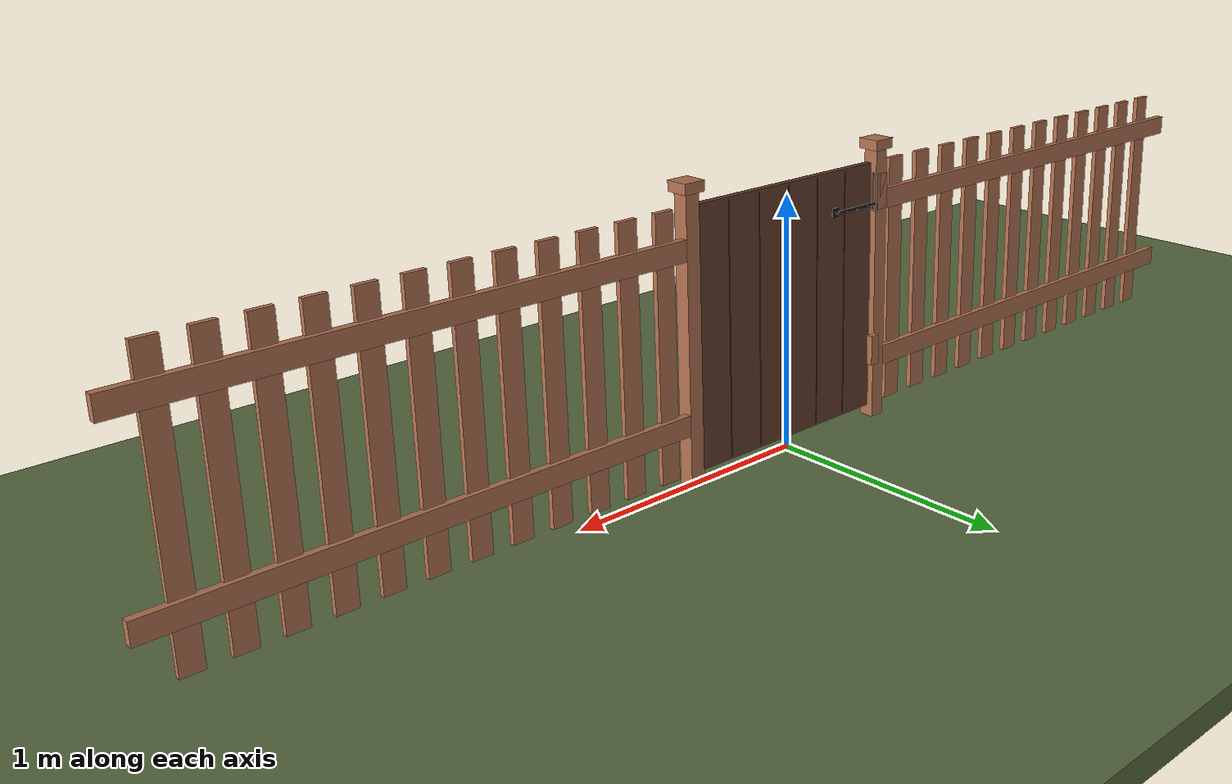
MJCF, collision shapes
<?xml version="1.0" ?>
<mujoco model="db0926_gate_swing_full">
  <compiler angle="radian" meshdir="../../hardware" texturedir="../../textures" autolimits="true" inertiafromgeom="false"/>
  <option timestep="0.002" integrator="implicitfast" cone="elliptic" impratio="10" noslip_iterations="3">
    <flag multiccd="enable"/>
  </option>
  <size memory="16M"/>
  <default>
    <geom condim="4" solref="0.005 1" solimp="0.95 0.99 0.001"/>
    <joint solreflimit="0.005 1" solimplimit="0.95 0.99 0.001"/>
    <tendon solreflimit="0.005 1"/>
    <equality solref="0.002 1"/>
  </default>
  <visual>
    <headlight ambient="0.4 0.4 0.4" diffuse="0.7 0.7 0.7" specular="0.2 0.2 0.2"/>
    <quality shadowsize="4096"/>
    <map znear="0.01" zfar="60"/>
  </visual>
  <asset>
    <mesh name="strap_hinge_f1a982ddce" file="strap_hinge_f1a982ddce.obj"/>
    <mesh name="thumb_latch_0073ea78ed" file="thumb_latch_0073ea78ed.obj"/>
    <material name="mat_floor" rgba="0.35 0.42 0.25 1" specular="0.2" shininess="0.15" reflectance="0"/>
    <material name="mat_wall" rgba="0.78 0.76 0.7 1" specular="0.2" shininess="0.1" reflectance="0"/>
    <material name="mat_leaf" rgba="0.391 0.239 0.161 1" specular="0.2" shininess="0.4" reflectance="0"/>
    <material name="mat_leaf_brace" rgba="0.352 0.215 0.145 1" specular="0.2" shininess="0.2" reflectance="0"/>
    <material name="mat_hinge" rgba="0.65 0.66 0.68 1" specular="0.74" shininess="0.5" reflectance="0.36"/>
    <material name="mat_op_wrought_iron" rgba="0.08 0.08 0.09 1" specular="0.56" shininess="0.25" reflectance="0.24"/>
    <material name="mat_frame" rgba="0.7 0.45 0.32 1" specular="0.2" shininess="0.4" reflectance="0"/>
    <material name="mat_bumper_stop" rgba="0.08 0.08 0.08 1" specular="0.2" shininess="0.1" reflectance="0"/>
    <material name="mat_stop_base" rgba="0.9 0.9 0.92 1" specular="0.8" shininess="0.9" reflectance="0.4"/>
    <material name="mat_fence" rgba="0.7 0.45 0.32 1" specular="0.2" shininess="0.4" reflectance="0"/>
    <texture name="skybox" type="skybox" builtin="gradient" rgb1="0.6 0.7 0.85" rgb2="0.9 0.92 0.95" width="256" height="256"/>
  </asset>
  <worldbody>
    <light name="sun" pos="1.5 -2.5 4" dir="-0.3 0.5 -0.8" directional="true" diffuse="0.8 0.8 0.8" specular="0.3 0.3 0.3" castshadow="true"/>
    <light name="fill" pos="-1.5 2.5 3" dir="0.3 -0.5 -0.7" directional="true" diffuse="0.35 0.35 0.4" castshadow="false"/>
    <camera name="robot_view" pos="0 -1.875 1.035" xyaxes="1 0 0 0 0.26963 0.962964" fovy="52"/>
    <camera name="far_view" pos="0 1.875 1.035" xyaxes="-1 0 0 0 -0.26963 0.962964" fovy="52"/>
    <camera name="iso" pos="-1.425 -1.575 1.335" xyaxes="0.741536 -0.670913 0 0.242917 0.268487 0.932151" fovy="46"/>
    <camera name="detail_handle" pos="-0.187 -0.8475 1.03" xyaxes="0.97561 0.219512 0 -0.070934 0.315262 0.94635" fovy="38"/>
    <geom name="floor" type="box" size="6 6 0.05" pos="0 0 -0.05" material="mat_floor" group="0" contype="1" conaffinity="1" friction="0.8 0.005 0.0001" density="2400"/>
    <geom name="hinge_pintle_0" type="cylinder" size="0.008 0.02" pos="0.453 -0.05 0.174" material="mat_hinge" group="1" contype="0" conaffinity="0" density="7850"/>
    <geom name="hinge_pintle_1" type="cylinder" size="0.008 0.02" pos="0.453 -0.05 0.874" material="mat_hinge" group="1" contype="0" conaffinity="0" density="7850"/>
    <geom name="leaf_latch_bar_keeper_b" type="box" size="0.015 0.0025 0.0005" pos="-0.4555 0.0245 0.8625" quat="0.5 0.5 0.5 0.5" material="mat_op_wrought_iron" group="1" contype="0" conaffinity="0" density="7800"/>
    <geom name="leaf_latch_bar_keeper_l" type="box" size="0.0025 0.07 0.0005" pos="-0.4555 0.012 0.935" quat="0.5 0.5 0.5 0.5" material="mat_op_wrought_iron" group="1" contype="0" conaffinity="0" density="7800"/>
    <geom name="leaf_latch_bar_keeper_t" type="box" size="0.015 0.0025 0.0005" pos="-0.4555 0.0245 1.0075" quat="0.5 0.5 0.5 0.5" material="mat_op_wrought_iron" group="1" contype="0" conaffinity="0" density="7800"/>
    <geom name="leaf_latch_bar_keeper_r" type="box" size="0.0025 0.07 0.0005" pos="-0.4555 0.037 0.935" quat="0.5 0.5 0.5 0.5" material="mat_op_wrought_iron" group="1" contype="0" conaffinity="0" density="7800"/>
    <geom name="post_hinge" type="box" size="0.03 0.03 0.55" pos="0.486 0 0.55" material="mat_frame" group="0" contype="1" conaffinity="1" friction="0.6 0.005 0.0001" density="350"/>
    <geom name="post_hinge_cap" type="box" size="0.045 0.045 0.02" pos="0.486 0 1.12" material="mat_frame" group="1" contype="0" conaffinity="0" density="350"/>
    <geom name="post_935_wall_n" type="box" size="0.03 0.00225 0.07" pos="-0.486 0.03225 0.935" material="mat_frame" group="0" contype="1" conaffinity="1" friction="0.6 0.005 0.0001" density="350"/>
    <geom name="post_935_wall_p" type="box" size="0.03 0.02225 0.07" pos="-0.486 -0.00775 0.935" material="mat_frame" group="0" contype="1" conaffinity="1" friction="0.6 0.005 0.0001" density="350"/>
    <geom name="post_935_back" type="box" size="0.02 0.01 0.07" pos="-0.496 0.0245 0.935" material="mat_frame" group="0" contype="1" conaffinity="1" friction="0.6 0.005 0.0001" density="350"/>
    <geom name="post_latch_0" type="box" size="0.03 0.03 0.4325" pos="-0.486 0 0.4325" material="mat_frame" group="0" contype="1" conaffinity="1" friction="0.6 0.005 0.0001" density="350"/>
    <geom name="post_latch_1" type="box" size="0.03 0.03 0.0475" pos="-0.486 0 1.0525" material="mat_frame" group="0" contype="1" conaffinity="1" friction="0.6 0.005 0.0001" density="350"/>
    <geom name="post_latch_cap" type="box" size="0.045 0.045 0.02" pos="-0.486 0 1.12" material="mat_frame" group="1" contype="0" conaffinity="0" density="350"/>
    <geom name="gate_stop" type="box" size="0.02 0.012 0.06" pos="-0.436 0.0465 0.3" material="mat_frame" group="0" contype="1" conaffinity="1" friction="0.6 0.005 0.0001" density="350"/>
    <geom name="door_stop_base" type="cylinder" size="0.022 0.003" pos="0.325576 -0.804333 0.003" material="mat_stop_base" group="0" contype="1" conaffinity="1" friction="0.6 0.005 0.0001" density="7850"/>
    <geom name="door_stop_post" type="cylinder" size="0.012 0.042" pos="0.325576 -0.804333 0.048" material="mat_stop_base" group="0" contype="1" conaffinity="1" friction="0.6 0.005 0.0001" density="7850"/>
    <geom name="door_stop_bumper" type="cylinder" size="0.022 0.02" pos="0.325576 -0.804333 0.11" material="mat_bumper_stop" group="0" contype="1" conaffinity="1" friction="0.6 0.005 0.0001" density="1100"/>
    <geom name="fence_picket_l_0" type="box" size="0.04 0.01 0.5" pos="-0.596 0 0.55" material="mat_fence" group="0" contype="1" conaffinity="1" friction="0.6 0.005 0.0001" density="400"/>
    <geom name="fence_picket_l_1" type="box" size="0.04 0.01 0.5" pos="-0.756 0 0.55" material="mat_fence" group="0" contype="1" conaffinity="1" friction="0.6 0.005 0.0001" density="400"/>
    <geom name="fence_picket_l_2" type="box" size="0.04 0.01 0.5" pos="-0.916 0 0.55" material="mat_fence" group="0" contype="1" conaffinity="1" friction="0.6 0.005 0.0001" density="400"/>
    <geom name="fence_picket_l_3" type="box" size="0.04 0.01 0.5" pos="-1.076 0 0.55" material="mat_fence" group="0" contype="1" conaffinity="1" friction="0.6 0.005 0.0001" density="400"/>
    <geom name="fence_picket_l_4" type="box" size="0.04 0.01 0.5" pos="-1.236 0 0.55" material="mat_fence" group="0" contype="1" conaffinity="1" friction="0.6 0.005 0.0001" density="400"/>
    <geom name="fence_picket_l_5" type="box" size="0.04 0.01 0.5" pos="-1.396 0 0.55" material="mat_fence" group="0" contype="1" conaffinity="1" friction="0.6 0.005 0.0001" density="400"/>
    <geom name="fence_picket_l_6" type="box" size="0.04 0.01 0.5" pos="-1.556 0 0.55" material="mat_fence" group="0" contype="1" conaffinity="1" friction="0.6 0.005 0.0001" density="400"/>
    <geom name="fence_picket_l_7" type="box" size="0.04 0.01 0.5" pos="-1.716 0 0.55" material="mat_fence" group="0" contype="1" conaffinity="1" friction="0.6 0.005 0.0001" density="400"/>
    <geom name="fence_picket_l_8" type="box" size="0.04 0.01 0.5" pos="-1.876 0 0.55" material="mat_fence" group="0" contype="1" conaffinity="1" friction="0.6 0.005 0.0001" density="400"/>
    <geom name="fence_picket_l_9" type="box" size="0.04 0.01 0.5" pos="-2.036 0 0.55" material="mat_fence" group="0" contype="1" conaffinity="1" friction="0.6 0.005 0.0001" density="400"/>
    <geom name="fence_picket_l_10" type="box" size="0.04 0.01 0.5" pos="-2.196 0 0.55" material="mat_fence" group="0" contype="1" conaffinity="1" friction="0.6 0.005 0.0001" density="400"/>
    <geom name="fence_picket_l_11" type="box" size="0.04 0.01 0.5" pos="-2.356 0 0.55" material="mat_fence" group="0" contype="1" conaffinity="1" friction="0.6 0.005 0.0001" density="400"/>
    <geom name="fence_rail_l" type="box" size="1 0.015 0.04" pos="-1.516 0.015 0.9" material="mat_fence" group="0" contype="1" conaffinity="1" friction="0.6 0.005 0.0001" density="400"/>
    <geom name="fence_rail_b_l" type="box" size="1 0.015 0.04" pos="-1.516 0.015 0.25" material="mat_fence" group="0" contype="1" conaffinity="1" friction="0.6 0.005 0.0001" density="400"/>
    <geom name="fence_picket_r_0" type="box" size="0.04 0.01 0.5" pos="0.596 0 0.55" material="mat_fence" group="0" contype="1" conaffinity="1" friction="0.6 0.005 0.0001" density="400"/>
    <geom name="fence_picket_r_1" type="box" size="0.04 0.01 0.5" pos="0.756 0 0.55" material="mat_fence" group="0" contype="1" conaffinity="1" friction="0.6 0.005 0.0001" density="400"/>
    <geom name="fence_picket_r_2" type="box" size="0.04 0.01 0.5" pos="0.916 0 0.55" material="mat_fence" group="0" contype="1" conaffinity="1" friction="0.6 0.005 0.0001" density="400"/>
    <geom name="fence_picket_r_3" type="box" size="0.04 0.01 0.5" pos="1.076 0 0.55" material="mat_fence" group="0" contype="1" conaffinity="1" friction="0.6 0.005 0.0001" density="400"/>
    <geom name="fence_picket_r_4" type="box" size="0.04 0.01 0.5" pos="1.236 0 0.55" material="mat_fence" group="0" contype="1" conaffinity="1" friction="0.6 0.005 0.0001" density="400"/>
    <geom name="fence_picket_r_5" type="box" size="0.04 0.01 0.5" pos="1.396 0 0.55" material="mat_fence" group="0" contype="1" conaffinity="1" friction="0.6 0.005 0.0001" density="400"/>
    <geom name="fence_picket_r_6" type="box" size="0.04 0.01 0.5" pos="1.556 0 0.55" material="mat_fence" group="0" contype="1" conaffinity="1" friction="0.6 0.005 0.0001" density="400"/>
    <geom name="fence_picket_r_7" type="box" size="0.04 0.01 0.5" pos="1.716 0 0.55" material="mat_fence" group="0" contype="1" conaffinity="1" friction="0.6 0.005 0.0001" density="400"/>
    <geom name="fence_picket_r_8" type="box" size="0.04 0.01 0.5" pos="1.876 0 0.55" material="mat_fence" group="0" contype="1" conaffinity="1" friction="0.6 0.005 0.0001" density="400"/>
    <geom name="fence_picket_r_9" type="box" size="0.04 0.01 0.5" pos="2.036 0 0.55" material="mat_fence" group="0" contype="1" conaffinity="1" friction="0.6 0.005 0.0001" density="400"/>
    <geom name="fence_picket_r_10" type="box" size="0.04 0.01 0.5" pos="2.196 0 0.55" material="mat_fence" group="0" contype="1" conaffinity="1" friction="0.6 0.005 0.0001" density="400"/>
    <geom name="fence_picket_r_11" type="box" size="0.04 0.01 0.5" pos="2.356 0 0.55" material="mat_fence" group="0" contype="1" conaffinity="1" friction="0.6 0.005 0.0001" density="400"/>
    <geom name="fence_rail_r" type="box" size="1 0.015 0.04" pos="1.516 0.015 0.9" material="mat_fence" group="0" contype="1" conaffinity="1" friction="0.6 0.005 0.0001" density="400"/>
    <geom name="fence_rail_b_r" type="box" size="1 0.015 0.04" pos="1.516 0.015 0.25" material="mat_fence" group="0" contype="1" conaffinity="1" friction="0.6 0.005 0.0001" density="400"/>
    <geom name="hinge_pintle_0_strap_0" type="box" size="0.0064 0.0065 0.016" pos="0.453 -0.036 0.174" material="mat_hinge" group="1" contype="0" conaffinity="0" density="7850"/>
    <geom name="hinge_pintle_1_strap_0" type="box" size="0.0064 0.0065 0.016" pos="0.453 -0.036 0.874" material="mat_hinge" group="1" contype="0" conaffinity="0" density="7850"/>
    <geom name="gate_stop_strap_0" type="box" size="0.02 0.00275 0.048" pos="-0.44 0.03225 0.3" material="mat_frame" group="1" contype="0" conaffinity="0" density="7850"/>
    <site name="approach_point" pos="0 -1.5 0" quat="1 0 0 0" size="0.05" rgba="0.2 0.9 0.2 0.5" group="4"/>
    <site name="goal_point" pos="0 1.5 0" quat="1 0 0 0" size="0.05" rgba="0.2 0.9 0.2 0.5" group="4"/>
    <site name="door_plane_center" pos="0 0 0.51" quat="1 0 0 0" size="0.02" rgba="0.2 0.9 0.2 0.5" group="4"/>
    <body name="leaf" pos="0.456 0 0">
      <inertial pos="-0.425692 -0.005744 0.566851" mass="8.855048" quat="0.625551 0.629221 0.326093 -0.326236" diaginertia="0.687207079 0.809790874 1.493536283"/>
      <joint name="leaf_hinge" type="hinge" axis="0 0 1" pos="-0.003 -0.05 0" limited="true" range="0 1.396263" damping="0.168492" frictionloss="4.901502" armature="0.02"/>
      <geom name="leaf_slab" type="box" size="0.45 0.0125 0.5" pos="-0.453 0 0.55" material="mat_leaf" group="0" contype="1" conaffinity="1" friction="0.35 0.005 0.0001" density="1"/>
      <geom name="leaf_plank_gap_1" type="box" size="0.002 0.0135 0.49" pos="-0.153 0 0.55" material="mat_leaf_brace" group="1" contype="0" conaffinity="0" density="1"/>
      <geom name="leaf_plank_gap_2" type="box" size="0.002 0.0135 0.49" pos="-0.303 0 0.55" material="mat_leaf_brace" group="1" contype="0" conaffinity="0" density="1"/>
      <geom name="leaf_plank_gap_3" type="box" size="0.002 0.0135 0.49" pos="-0.453 0 0.55" material="mat_leaf_brace" group="1" contype="0" conaffinity="0" density="1"/>
      <geom name="leaf_plank_gap_4" type="box" size="0.002 0.0135 0.49" pos="-0.603 0 0.55" material="mat_leaf_brace" group="1" contype="0" conaffinity="0" density="1"/>
      <geom name="leaf_plank_gap_5" type="box" size="0.002 0.0135 0.49" pos="-0.753 0 0.55" material="mat_leaf_brace" group="1" contype="0" conaffinity="0" density="1"/>
      <geom name="leaf_batten_17" type="box" size="0.42 0.01 0.045" pos="-0.453 -0.0225 0.17" material="mat_leaf_brace" group="1" contype="0" conaffinity="0" density="1"/>
      <geom name="leaf_batten_93" type="box" size="0.42 0.01 0.045" pos="-0.453 -0.0225 0.93" material="mat_leaf_brace" group="1" contype="0" conaffinity="0" density="1"/>
      <geom name="leaf_brace_z" type="box" size="0.455388 0.01 0.045" pos="-0.453 -0.0225 0.55" quat="0.942368 0 0.334579 0" material="mat_leaf_brace" group="1" contype="0" conaffinity="0" density="1"/>
      <geom name="leaf_brace_x" type="box" size="0.455388 0.01 0.045" pos="-0.453 -0.0225 0.55" quat="0.942368 0 -0.334579 0" material="mat_leaf_brace" group="1" contype="0" conaffinity="0" density="1"/>
      <geom name="hinge_strap_0" type="mesh" mesh="strap_hinge_f1a982ddce" pos="-0.003 -0.0155 0.2" quat="0 0 0 1" material="mat_hinge" group="1" contype="0" conaffinity="0" density="7850"/>
      <geom name="hinge_strap_eye_0" type="cylinder" size="0.011 0.012" pos="-0.003 -0.05 0.2" material="mat_hinge" group="1" contype="0" conaffinity="0" density="7850"/>
      <geom name="hinge_strap_neck_0" type="box" size="0.012 0.02125 0.006" pos="-0.003 -0.03275 0.2" material="mat_hinge" group="1" contype="0" conaffinity="0" density="7850"/>
      <geom name="hinge_strap_1" type="mesh" mesh="strap_hinge_f1a982ddce" pos="-0.003 -0.0155 0.9" quat="0 0 0 1" material="mat_hinge" group="1" contype="0" conaffinity="0" density="7850"/>
      <geom name="hinge_strap_eye_1" type="cylinder" size="0.011 0.012" pos="-0.003 -0.05 0.9" material="mat_hinge" group="1" contype="0" conaffinity="0" density="7850"/>
      <geom name="hinge_strap_neck_1" type="box" size="0.012 0.02125 0.006" pos="-0.003 -0.03275 0.9" material="mat_hinge" group="1" contype="0" conaffinity="0" density="7850"/>
      <geom name="leaf_suffolk_grip" type="mesh" mesh="thumb_latch_0073ea78ed" pos="-0.823 -0.0125 0.75" quat="0 0 -0.707107 0.707107" material="mat_op_wrought_iron" group="1" contype="0" conaffinity="0" density="7000"/>
      <geom name="leaf_suffolk_grip_col" type="capsule" size="0.008 0.09" pos="-0.823 -0.0475 0.75" material="mat_op_wrought_iron" group="3" contype="1" conaffinity="1" rgba="0.8 0.3 0.3 0.25" friction="0.7 0.01 0.0001" density="7000"/>
      <geom name="leaf_latch_bar_pivot" type="box" size="0.018 0.002 0.018" pos="-0.703 0.0145 0.89" material="mat_op_wrought_iron" group="1" contype="0" conaffinity="0" density="7000"/>
      <geom name="leaf_latch_bar_pin" type="cylinder" size="0.005 0.01" pos="-0.703 0.0225 0.89" quat="0.707107 -0.707107 0 0" material="mat_op_wrought_iron" group="1" contype="0" conaffinity="0" density="7000"/>
      <site name="leaf_grip_n" pos="-0.823 -0.0475 0.75" quat="1 0 0 0" size="0.012" rgba="0.2 0.9 0.2 0.5" group="4"/>
      <site name="leaf_edge_mid" pos="-0.903 0 0.5" quat="1 0 0 0" size="0.02" rgba="0.2 0.9 0.2 0.5" group="4"/>
      <body name="leaf_thumb" pos="-0.823 -0.0125 0.895">
        <inertial pos="0 -0.005933 -0.005008" mass="0.119952" quat="0.694063 -0.13519 -0.13519 -0.694063" diaginertia="0.000010452 0.000028338 0.000030045"/>
        <joint name="leaf_thumb_hinge" type="hinge" axis="1 0 0" limited="true" range="0 0.3" damping="0.155195" frictionloss="0.032" stiffness="0.6" springref="-0.5" armature="0.01"/>
        <geom name="leaf_thumb_geom" type="box" size="0.015 0.014 0.003" pos="0 -0.02 0" material="mat_op_wrought_iron" group="0" contype="1" conaffinity="1" friction="0.6 0.005 0.0001" density="7000"/>
        <geom name="leaf_thumb_boss" type="box" size="0.012 0.008 0.013" pos="0 -0.004 -0.005" material="mat_op_wrought_iron" group="1" contype="0" conaffinity="0" density="7000"/>
        <geom name="leaf_thumb_lifter" type="box" size="0.004 0.0165 0.004" pos="0 0.0185 -0.017" material="mat_op_wrought_iron" group="1" contype="0" conaffinity="0" density="7000"/>
        <site name="leaf_thumb_push" pos="0 -0.024 0.005" quat="1 0 0 0" size="0.01" rgba="0.2 0.9 0.2 0.5" group="4"/>
      </body>
      <body name="leaf_latch_bar" pos="-0.703 0.0245 0.89">
        <inertial pos="-0.106 0 0" mass="0.25" quat="0 0 -0.707107 0.707107" diaginertia="0.000004465 0.000904065 0.000904065"/>
        <joint name="leaf_latch_bar_hinge" type="hinge" axis="0 1 0" limited="true" range="0 0.6" damping="0.01" frictionloss="0.01" armature="0.005"/>
        <geom name="leaf_latch_bar_geom" type="capsule" size="0.006 0.1" pos="-0.106 0 0" quat="0.707107 0 -0.707107 0" material="mat_op_wrought_iron" group="0" contype="1" conaffinity="1" friction="0.6 0.005 0.0001" density="7850"/>
      </body>
    </body>
  </worldbody>
  <equality>
    <joint name="leaf_thumb_couple" joint1="leaf_latch_bar_hinge" joint2="leaf_thumb_hinge" polycoef="0 2 0 0 0" active="true"/>
  </equality>
  <sensor>
    <jointpos name="leaf_hinge_pos" joint="leaf_hinge"/>
    <jointvel name="leaf_hinge_vel" joint="leaf_hinge"/>
    <jointpos name="leaf_thumb_hinge_pos" joint="leaf_thumb_hinge"/>
    <jointvel name="leaf_thumb_hinge_vel" joint="leaf_thumb_hinge"/>
    <jointpos name="leaf_latch_bar_hinge_pos" joint="leaf_latch_bar_hinge"/>
    <jointvel name="leaf_latch_bar_hinge_vel" joint="leaf_latch_bar_hinge"/>
  </sensor>
</mujoco>
